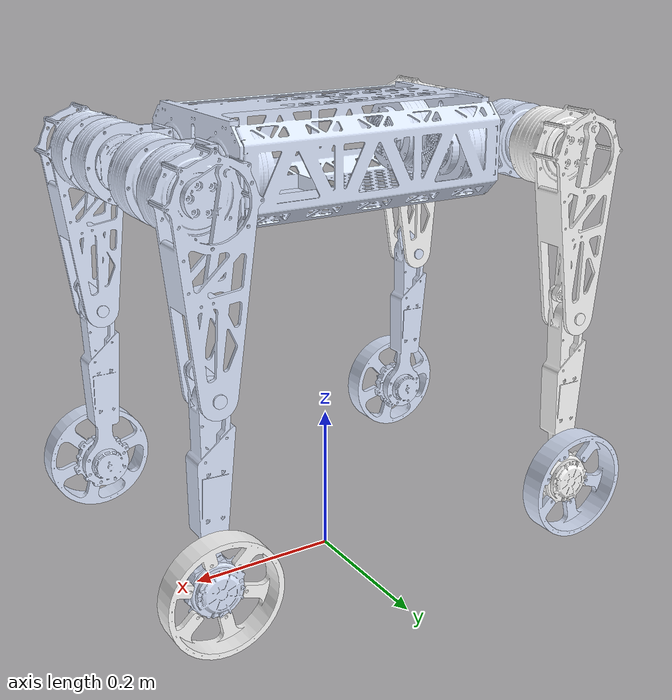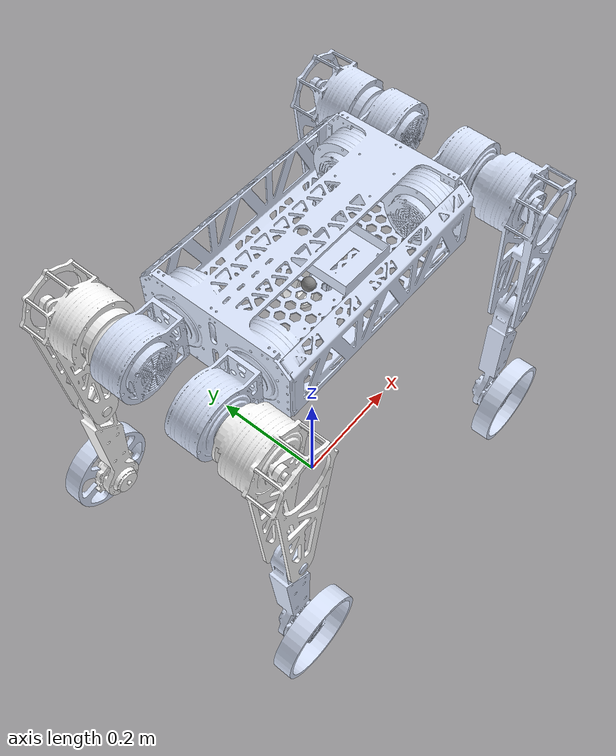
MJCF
<mujoco model="M3">
    <compiler angle="radian" meshdir="/home/lkz/HIMLoco-for-M3/resources/robots/M3/mjcf/assets/" />
    <size njmax="500" nconmax="100" />

    <option cone="elliptic" impratio="100" timestep="0.005" />

    <default>
        <default class="M3">
            <geom friction="0.4" margin="0.001" condim="1" />
            <joint axis="0 1 0" damping="0.0" armature="0.01" frictionloss="0.0" />
            <motor ctrlrange="-40 40" />
            <default class="abduction">
                <joint axis="1 0 0" range="-1.0472 1.0472" />
            </default>
            <default class="hip">
                <default class="front_hip">
                    <joint range="-1.5708 3.4907" />
                </default>
                <default class="back_hip">
                    <joint range="-0.5236 4.5379" />
                </default>
            </default>
            <default class="knee">
                <joint range="-2.7227 -0.83776" />
                <motor ctrlrange="-45.43 45.43" />
            </default>
            <default class="visual">
                <geom type="mesh" contype="0" conaffinity="0" group="2" />
            </default>
            <default class="collision">
                <geom group="3" />
                <default class="foot">
                    <geom size="0.022" pos="-0.002 0 -0.2264" priority="1" condim="6" friction="0.8 0.02 0.01" />
                </default>
            </default>
            <default class="collision_visual">
                <geom type="mesh" group="2" priority="1" condim="6" friction="0.8 0.02 0.01" />
            </default>
        </default>
    </default>

    <asset>
        <mesh name="base" file="base.STL" />
        <mesh name="FL_hip" file="FL_hip.STL" />
        <mesh name="FL_thigh" file="FL_thigh.STL" />
        <mesh name="FL_calf" file="FL_calf.STL" />
        <mesh name="FL_foot" file="FL_foot.STL" />
        <mesh name="FR_hip" file="FR_hip.STL" />
        <mesh name="FR_thigh" file="FR_thigh.STL" />
        <mesh name="FR_calf" file="FR_calf.STL" />
        <mesh name="FR_foot" file="FR_foot.STL" />
        <mesh name="RR_hip" file="RR_hip.STL" />
        <mesh name="RR_thigh" file="RR_thigh.STL" />
        <mesh name="RR_calf" file="RR_calf.STL" />
        <mesh name="RR_foot" file="RR_foot.STL" />
        <mesh name="RL_hip" file="RL_hip.STL" />
        <mesh name="RL_thigh" file="RL_thigh.STL" />
        <mesh name="RL_calf" file="RL_calf.STL" />
        <mesh name="RL_foot" file="RL_foot.STL" />
    </asset>

    <worldbody>
        <body name="base" pos="0 0 0.5">
            <freejoint name="root"/>

            <site name="imu" size="0.01" pos="-0.00583 0.00201 0.00949" />

            <geom type="mesh" contype="0" conaffinity="0" group="1" rgba="0.86667 0.9098 1 1" mesh="base" />

            <body name="FL_hip" pos="0.18927 0.062273 0.059297">
                <inertial pos="0.054696 0.0011963 2.9384e-05" quat="0.49373 0.494567 0.505085 0.506482" mass="1.0416" diaginertia="0.00448742 0.0043197 0.000390551" />
                <joint name="FL_hip_joint" pos="0 0 0" axis="1 0 0" limited="true" damping="0.0" armature="0.01" frictionloss="0.0" range="-1.0 1.0" />
                <geom type="mesh" group="1" rgba="0.86667 0.9098 1 1" mesh="FL_hip" />
                <body name="FL_thigh" pos="0.064 0.1157 0">
                    <joint name="FL_thigh_joint" pos="0 0 0" axis="0 1 0" limited="true" damping="0.0" armature="0.01" frictionloss="0.0" range="-1.5 3.49" />
                    <geom type="mesh" group="1" rgba="0.86667 0.9098 1 1" mesh="FL_thigh" />
                    <body name="FL_calf" pos="0.0031381 0.0188 -0.21198">
                        <joint name="FL_calf_joint" pos="0 0 0" axis="0 1 0" limited="true" damping="0.0" armature="0.01" frictionloss="0.0" range="-2.45 -0.84" />
                        <geom type="mesh" group="1" rgba="0.86667 0.9098 1 1" mesh="FL_calf" />
                        <body name="FL_foot" pos="0.010478 -0.0155 -0.22676">
                            <joint name="FL_foot_joint" pos="0 0 0" axis="0 1 0" limited="true" damping="0.0" armature="0.01" frictionloss="0.0" range="-999999 999999" />
                            <geom type="mesh" group="1" rgba="1 1 1 1" mesh="FL_foot" />
                        </body>
                    </body>
                </body>
            </body>

            <body name="FR_hip" pos="0.18927 -0.057726 0.059689">
                <joint name="FR_hip_joint" pos="0 0 0" axis="1 0 0" limited="true" damping="0.0" armature="0.01" frictionloss="0.0" range="-1.0 1.0" />
                <geom type="mesh" group="1" rgba="0.86667 0.9098 1 1" mesh="FR_hip" />
                <body name="FR_thigh" pos="0.064 -0.11568 -0.00206">
                    <joint name="FR_thigh_joint" pos="0 0 0" axis="0 1 0" limited="true" damping="0.0" armature="0.01" frictionloss="0.0" range="-1.5 3.49" />
                    <geom type="mesh" group="1" rgba="0.86667 0.9098 1 1" mesh="FR_thigh" />
                    <body name="FR_calf" pos="-0.0020864 -0.015023 -0.21229">
                        <joint name="FR_calf_joint" pos="0 0 0" axis="0 1 0" limited="true" damping="0.0" armature="0.01" frictionloss="0.0" range="-2.45 -0.84" />
                        <geom type="mesh" group="1" rgba="0.86667 0.9098 1 1" mesh="FR_calf" />
                        <body name="FR_foot" pos="0.0036099 0.024038 -0.22658">
                            <joint name="FR_foot_joint" pos="0 0 0" axis="0 1 0" limited="true" damping="0.0" armature="0.01" frictionloss="0.0" range="-999999 999999" />
                            <geom type="mesh" group="1" rgba="0.86667 0.9098 1 1" mesh="FR_foot" />
                        </body>
                    </body>
                </body>
            </body>

            <body name="RL_hip" pos="-0.18913 0.062273 0.059297">
                <joint name="RL_hip_joint" pos="0 0 0" axis="1 0 0" limited="true" damping="0.0" armature="0.01" frictionloss="0.0" range="-1.0 1.0" />
                <geom type="mesh" group="1" rgba="0.86667 0.9098 1 1" mesh="RL_hip" />
                <body name="RL_thigh" pos="-0.064 0.1157 0">
                    <joint name="RL_thigh_joint" pos="0 0 0" axis="0 1 0" limited="true" damping="0.0" armature="0.01" frictionloss="0.0" range="-0.6 4.54" />
                    <geom type="mesh" group="1" rgba="1 1 1 1" mesh="RL_thigh" />
                    <body name="RL_calf" pos="-0.0041197 0.0188 -0.21196">
                        <joint name="RL_calf_joint" pos="0 0 0" axis="0 1 0" limited="true" damping="0.0" armature="0.01" frictionloss="0.0" range="-2.45 -0.84" />
                        <geom type="mesh" group="1" rgba="1 1 1 1" mesh="RL_calf" />
                        <body name="RL_foot" pos="0.0034722 -0.02 -0.22697">
                            <joint name="RL_foot_joint" pos="0 0 0" axis="0 1 0" limited="true" damping="0.0" armature="0.01" frictionloss="0.0" range="-999999 999999" />
                            <geom type="mesh" group="1" rgba="0.86667 0.9098 1 1" mesh="RL_foot" />
                        </body>
                    </body>
                </body>
            </body>

            <body name="RR_hip" pos="-0.18913 -0.057726 0.059689">
                <joint name="RR_hip_joint" pos="0 0 0" axis="1 0 0" limited="true" damping="0.0" armature="0.01" frictionloss="0.0" range="-1.0 1.0" />
                <geom type="mesh" group="1" rgba="0.86667 0.9098 1 1" mesh="RR_hip" />
                <body name="RR_thigh" pos="-0.064 -0.1057 0">
                    <joint name="RR_thigh_joint" pos="0 0 0" axis="0 1 0" limited="true" damping="0.0" armature="0.01" frictionloss="0.0" range="-0.6 4.54" />
                    <geom type="mesh" group="1" rgba="1 1 1 1" mesh="RR_thigh" />
                    <body name="RR_calf" pos="-0.0093571 -0.0288 -0.21179">
                        <joint name="RR_calf_joint" pos="0 0 0" axis="0 1 0" limited="true" damping="0.0" armature="0.01" frictionloss="0.0" range="-2.45 -0.84" />
                        <geom type="mesh" group="1" rgba="0.86667 0.9098 1 1" mesh="RR_calf" />
                        <body name="RR_foot" pos="0.0083461 0.02 -0.22685">
                            <joint name="RR_foot_joint" pos="0 0 0" axis="0 1 0" limited="true" damping="0.0" armature="0.01" frictionloss="0.0" range="-999999 999999" />
                            <geom type="mesh" group="1" rgba="0.86667 0.9098 1 1" mesh="RR_foot" />
                        </body>
                    </body>
                </body>
            </body>
        </body>
    </worldbody>

    <actuator>
        <motor class="abduction" name="FL_hip" joint="FL_hip_joint" />
        <motor class="hip" name="FL_thigh" joint="FL_thigh_joint" />
        <motor class="knee" name="FL_calf" joint="FL_calf_joint" />
        <motor name="FL_foot" joint="FL_foot_joint" ctrlrange="-6.47 6.47" />

        <motor class="abduction" name="FR_hip" joint="FR_hip_joint" />
        <motor class="hip" name="FR_thigh" joint="FR_thigh_joint" />
        <motor class="knee" name="FR_calf" joint="FR_calf_joint" />
        <motor name="FR_foot" joint="FR_foot_joint" ctrlrange="-6.47 6.47" />

        <motor class="abduction" name="RL_hip" joint="RL_hip_joint" />
        <motor class="hip" name="RL_thigh" joint="RL_thigh_joint" />
        <motor class="knee" name="RL_calf" joint="RL_calf_joint" />
        <motor name="RL_foot" joint="RL_foot_joint" ctrlrange="-6.47 6.47" />

        <motor class="abduction" name="RR_hip" joint="RR_hip_joint" />
        <motor class="hip" name="RR_thigh" joint="RR_thigh_joint" />
        <motor class="knee" name="RR_calf" joint="RR_calf_joint" />
        <motor name="RR_foot" joint="RR_foot_joint" ctrlrange="-6.47 6.47" />
    </actuator>

    <sensor>
        <jointpos name="FL_hip_joint_pos" joint="FL_hip_joint" />
        <jointpos name="FL_thigh_joint_pos" joint="FL_thigh_joint" />
        <jointpos name="FL_calf_joint_pos" joint="FL_calf_joint" />
        <jointpos name="FL_wheel_joint_pos" joint="FL_foot_joint" />
        <jointpos name="FR_hip_joint_pos" joint="FR_hip_joint" />
        <jointpos name="FR_thigh_joint_pos" joint="FR_thigh_joint" />
        <jointpos name="FR_calf_joint_pos" joint="FR_calf_joint" />
        <jointpos name="FR_wheel_joint_pos" joint="FR_foot_joint" />
        <jointpos name="RL_hip_joint_pos" joint="RL_hip_joint" />
        <jointpos name="RL_thigh_joint_pos" joint="RL_thigh_joint" />
        <jointpos name="RL_calf_joint_pos" joint="RL_calf_joint" />
        <jointpos name="RL_wheel_joint_pos" joint="RL_foot_joint" />
        <jointpos name="RR_hip_joint_pos" joint="RR_hip_joint" />
        <jointpos name="RR_thigh_joint_pos" joint="RR_thigh_joint" />
        <jointpos name="RR_calf_joint_pos" joint="RR_calf_joint" />
        <jointpos name="RR_wheel_joint_pos" joint="RR_foot_joint" />

        <jointvel name="FL_hip_joint_vel" joint="FL_hip_joint" />
        <jointvel name="FL_thigh_joint_vel" joint="FL_thigh_joint" />
        <jointvel name="FL_calf_joint_vel" joint="FL_calf_joint" />
        <jointvel name="FL_wheel_joint_vel" joint="FL_foot_joint" />
        <jointvel name="FR_hip_joint_vel" joint="FR_hip_joint" />
        <jointvel name="FR_thigh_joint_vel" joint="FR_thigh_joint" />
        <jointvel name="FR_calf_joint_vel" joint="FR_calf_joint" />
        <jointvel name="FR_wheel_joint_vel" joint="FR_foot_joint" />
        <jointvel name="RL_hip_joint_vel" joint="RL_hip_joint" />
        <jointvel name="RL_thigh_joint_vel" joint="RL_thigh_joint" />
        <jointvel name="RL_calf_joint_vel" joint="RL_calf_joint" />
        <jointvel name="RL_wheel_joint_vel" joint="RL_foot_joint" />
        <jointvel name="RR_hip_joint_vel" joint="RR_hip_joint" />
        <jointvel name="RR_thigh_joint_vel" joint="RR_thigh_joint" />
        <jointvel name="RR_calf_joint_vel" joint="RR_calf_joint" />
        <jointvel name="RR_wheel_joint_vel" joint="RR_foot_joint" />

        <framequat name="imu_quat" objtype="site" objname="imu" />
        <gyro name="imu_gyro" site="imu" />
        <accelerometer name="imu_acc" site="imu" />
        <framepos name="frame_pos" objtype="site" objname="imu" />
        <framelinvel name="frame_vel" objtype="site" objname="imu" />
    </sensor>
</mujoco>
